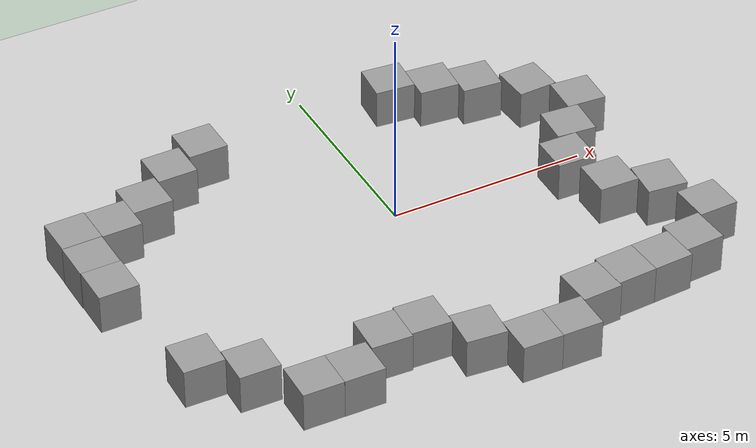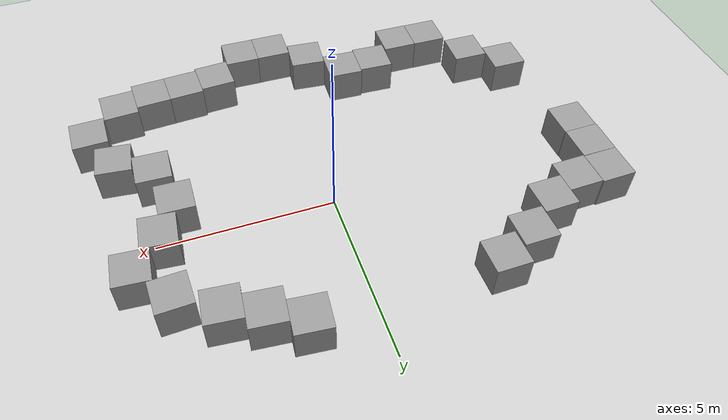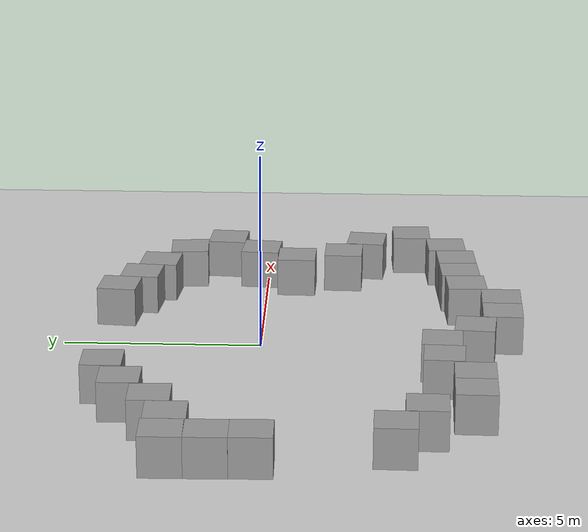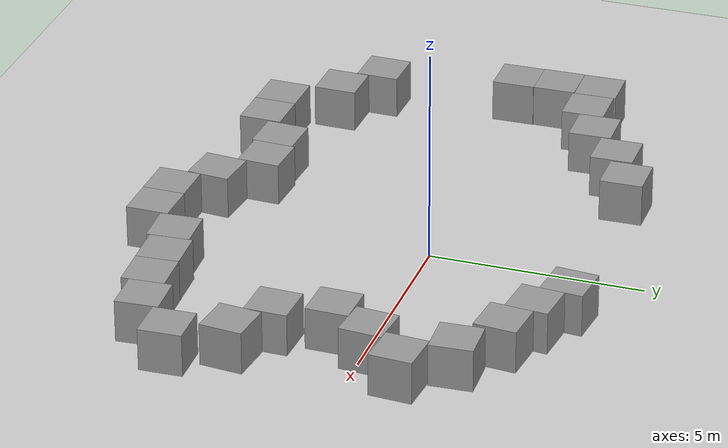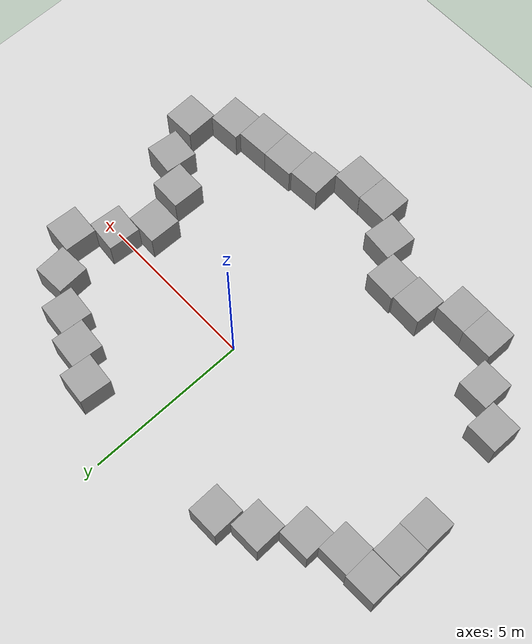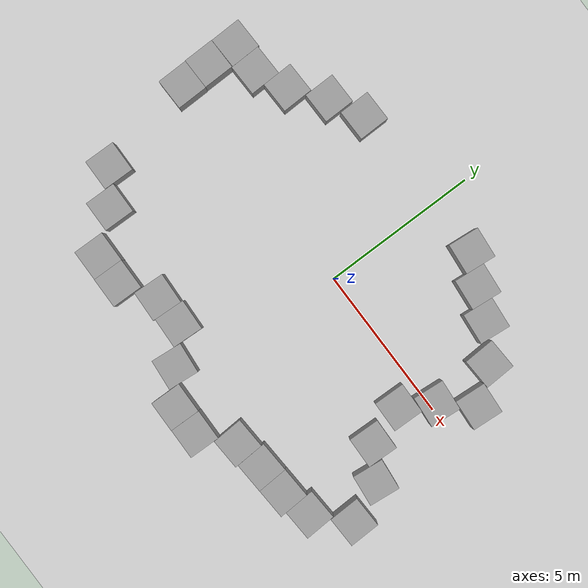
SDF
<sdf version="1.6">
 <world name="default">
  <light name="sun" type="directional">
   <pose>0 0 10 0 -0 0</pose>
   <diffuse>0.8 0.8 0.8 1</diffuse>
   <specular>0.2 0.2 0.2 1</specular>
   <attenuation>
    <range>1000</range>
    <constant>0.9</constant>
    <linear>0.01</linear>
    <quadratic>0.001</quadratic>
   </attenuation>
   <direction>-0.5 0.1 -0.9</direction>
  </light>
  <model name="ground_plane">
   <static>1</static>
   <link name="link">
    <collision name="collision">
     <geometry><plane><normal>0 0 1</normal><size>100 100</size></plane></geometry>
     <surface><friction><ode><mu>100</mu><mu2>50</mu2></ode></friction></surface>
    </collision>
    <visual name="visual">
     <cast_shadows>0</cast_shadows>
     <geometry><plane><normal>0 0 1</normal><size>100 100</size></plane></geometry>
     <material>
      <script><uri>file://media/materials/scripts/gazebo.material</uri><name>Gazebo/Grey</name></script>
     </material>
    </visual>
   </link>
  </model>
  <gravity>0 0 -9.8</gravity>
  <magnetic_field>6e-06 2.3e-05 -4.2e-05</magnetic_field>
  <atmosphere type="adiabatic"/>
  <physics name="default_physics" default="0" type="ode">
   <max_step_size>0.001</max_step_size>
   <real_time_factor>1</real_time_factor>
   <real_time_update_rate>1000</real_time_update_rate>
  </physics>
  <scene><ambient>0.4 0.4 0.4 1</ambient><background>0.7 0.7 0.7 1</background><shadows>1</shadows></scene>
  <audio><device>default</device></audio>
  <spherical_coordinates>
   <surface_model>EARTH_WGS84</surface_model>
   <latitude_deg>0</latitude_deg>
   <longitude_deg>0</longitude_deg>
   <elevation>0</elevation>
   <heading_deg>0</heading_deg>
  </spherical_coordinates>
  <model name="unit_box_0">
   <pose>2.18165 -5.25565 0.5 0 -0 0.052686</pose>
   <link name="link">
    <inertial>
     <mass>1</mass>
     <inertia>
      <ixx>0.166667</ixx>
      <ixy>0</ixy>
      <ixz>0</ixz>
      <iyy>0.166667</iyy>
      <iyz>0</iyz>
      <izz>0.166667</izz>
     </inertia>
    </inertial>
    <collision name="collision"><geometry><box><size>1 1 1</size></box></geometry></collision>
    <visual name="visual">
     <geometry><box><size>1 1 1</size></box></geometry>
     <material>
      <script><name>Gazebo/Grey</name><uri>file://media/materials/scripts/gazebo.material</uri></script>
     </material>
    </visual>
   </link>
  </model>
  <model name="unit_box_3">
   <pose>-3.34176 3.63801 0.5 0 -0 0.012286</pose>
   <link name="link">
    <inertial>
     <mass>1</mass>
     <inertia>
      <ixx>0.166667</ixx>
      <ixy>0</ixy>
      <ixz>0</ixz>
      <iyy>0.166667</iyy>
      <iyz>0</iyz>
      <izz>0.166667</izz>
     </inertia>
    </inertial>
    <collision name="collision"><geometry><box><size>1 1 1</size></box></geometry></collision>
    <visual name="visual">
     <geometry><box><size>1 1 1</size></box></geometry>
     <material>
      <script><name>Gazebo/Grey</name><uri>file://media/materials/scripts/gazebo.material</uri></script>
     </material>
    </visual>
   </link>
  </model>
  <model name="unit_box_4">
   <pose>-4.38572 3.11645 0.5 0 -0 0.012284</pose>
   <link name="link">
    <inertial>
     <mass>1</mass>
     <inertia>
      <ixx>0.166667</ixx>
      <ixy>0</ixy>
      <ixz>0</ixz>
      <iyy>0.166667</iyy>
      <iyz>0</iyz>
      <izz>0.166667</izz>
     </inertia>
    </inertial>
    <collision name="collision"><geometry><box><size>1 1 1</size></box></geometry></collision>
    <visual name="visual">
     <geometry><box><size>1 1 1</size></box></geometry>
     <material>
      <script><name>Gazebo/Grey</name><uri>file://media/materials/scripts/gazebo.material</uri></script>
     </material>
    </visual>
   </link>
  </model>
  <model name="unit_box_5">
   <pose>-5.38874 2.31686 0.5 0 -0 0.02298</pose>
   <link name="link">
    <inertial>
     <mass>1</mass>
     <inertia>
      <ixx>0.166667</ixx>
      <ixy>0</ixy>
      <ixz>0</ixz>
      <iyy>0.166667</iyy>
      <iyz>0</iyz>
      <izz>0.166667</izz>
     </inertia>
    </inertial>
    <collision name="collision"><geometry><box><size>1 1 1</size></box></geometry></collision>
    <visual name="visual">
     <geometry><box><size>1 1 1</size></box></geometry>
     <material>
      <script><name>Gazebo/Grey</name><uri>file://media/materials/scripts/gazebo.material</uri></script>
     </material>
    </visual>
   </link>
  </model>
  <model name="unit_box_6">
   <pose>-6.37862 1.86112 0.5 0 -0 0.02291</pose>
   <link name="link">
    <inertial>
     <mass>1</mass>
     <inertia>
      <ixx>0.166667</ixx>
      <ixy>0</ixy>
      <ixz>0</ixz>
      <iyy>0.166667</iyy>
      <iyz>0</iyz>
      <izz>0.166667</izz>
     </inertia>
    </inertial>
    <collision name="collision"><geometry><box><size>1 1 1</size></box></geometry></collision>
    <visual name="visual">
     <geometry><box><size>1 1 1</size></box></geometry>
     <material>
      <script><name>Gazebo/Grey</name><uri>file://media/materials/scripts/gazebo.material</uri></script>
     </material>
    </visual>
   </link>
  </model>
  <model name="unit_box_7">
   <pose>-7.37984 1.87719 0.5 0 -0 0.022454</pose>
   <link name="link">
    <inertial>
     <mass>1</mass>
     <inertia>
      <ixx>0.166667</ixx>
      <ixy>0</ixy>
      <ixz>0</ixz>
      <iyy>0.166667</iyy>
      <iyz>0</iyz>
      <izz>0.166667</izz>
     </inertia>
    </inertial>
    <collision name="collision"><geometry><box><size>1 1 1</size></box></geometry></collision>
    <visual name="visual">
     <geometry><box><size>1 1 1</size></box></geometry>
     <material>
      <script><name>Gazebo/Grey</name><uri>file://media/materials/scripts/gazebo.material</uri></script>
     </material>
    </visual>
   </link>
  </model>
  <model name="unit_box_8">
   <pose>-7.37057 0.872018 0.5 0 -0 0.012443</pose>
   <link name="link">
    <inertial>
     <mass>1</mass>
     <inertia>
      <ixx>0.166667</ixx>
      <ixy>0</ixy>
      <ixz>0</ixz>
      <iyy>0.166667</iyy>
      <iyz>0</iyz>
      <izz>0.166667</izz>
     </inertia>
    </inertial>
    <collision name="collision"><geometry><box><size>1 1 1</size></box></geometry></collision>
    <visual name="visual">
     <geometry><box><size>1 1 1</size></box></geometry>
     <material>
      <script><name>Gazebo/Grey</name><uri>file://media/materials/scripts/gazebo.material</uri></script>
     </material>
    </visual>
   </link>
  </model>
  <model name="unit_box_9">
   <pose>1.8061 3.77344 0.5 0 0 -0.094189</pose>
   <link name="link">
    <inertial>
     <mass>1</mass>
     <inertia>
      <ixx>0.166667</ixx>
      <ixy>0</ixy>
      <ixz>0</ixz>
      <iyy>0.166667</iyy>
      <iyz>0</iyz>
      <izz>0.166667</izz>
     </inertia>
    </inertial>
    <collision name="collision"><geometry><box><size>1 1 1</size></box></geometry></collision>
    <visual name="visual">
     <geometry><box><size>1 1 1</size></box></geometry>
     <material>
      <script><name>Gazebo/Grey</name><uri>file://media/materials/scripts/gazebo.material</uri></script>
     </material>
    </visual>
   </link>
  </model>
  <model name="unit_box_10">
   <pose>2.76351 3.27538 0.5 0 -0 -0.094193</pose>
   <link name="link">
    <inertial>
     <mass>1</mass>
     <inertia>
      <ixx>0.166667</ixx>
      <ixy>0</ixy>
      <ixz>0</ixz>
      <iyy>0.166667</iyy>
      <iyz>0</iyz>
      <izz>0.166667</izz>
     </inertia>
    </inertial>
    <collision name="collision"><geometry><box><size>1 1 1</size></box></geometry></collision>
    <visual name="visual">
     <geometry><box><size>1 1 1</size></box></geometry>
     <material>
      <script><name>Gazebo/Grey</name><uri>file://media/materials/scripts/gazebo.material</uri></script>
     </material>
    </visual>
   </link>
  </model>
  <model name="unit_box_11">
   <pose>3.72875 2.86019 0.5 0 -0 -0.094191</pose>
   <link name="link">
    <inertial>
     <mass>1</mass>
     <inertia>
      <ixx>0.166667</ixx>
      <ixy>0</ixy>
      <ixz>0</ixz>
      <iyy>0.166667</iyy>
      <iyz>0</iyz>
      <izz>0.166667</izz>
     </inertia>
    </inertial>
    <collision name="collision"><geometry><box><size>1 1 1</size></box></geometry></collision>
    <visual name="visual">
     <geometry><box><size>1 1 1</size></box></geometry>
     <material>
      <script><name>Gazebo/Grey</name><uri>file://media/materials/scripts/gazebo.material</uri></script>
     </material>
    </visual>
   </link>
  </model>
  <model name="unit_box_12">
   <pose>-7.34496 -0.127807 0.499995 1e-05 -0 0.01235</pose>
   <link name="link">
    <inertial>
     <mass>1</mass>
     <inertia>
      <ixx>0.166667</ixx>
      <ixy>0</ixy>
      <ixz>0</ixz>
      <iyy>0.166667</iyy>
      <iyz>0</iyz>
      <izz>0.166667</izz>
     </inertia>
    </inertial>
    <collision name="collision"><geometry><box><size>1 1 1</size></box></geometry></collision>
    <visual name="visual">
     <geometry><box><size>1 1 1</size></box></geometry>
     <material>
      <script><name>Gazebo/Grey</name><uri>file://media/materials/scripts/gazebo.material</uri></script>
     </material>
    </visual>
   </link>
  </model>
  <model name="unit_box_15">
   <pose>-6.73539 -3.32737 0.5 -0 -0 -0.019647</pose>
   <link name="link">
    <inertial>
     <mass>1</mass>
     <inertia>
      <ixx>0.166667</ixx>
      <ixy>0</ixy>
      <ixz>0</ixz>
      <iyy>0.166667</iyy>
      <iyz>0</iyz>
      <izz>0.166667</izz>
     </inertia>
    </inertial>
    <collision name="collision"><geometry><box><size>1 1 1</size></box></geometry></collision>
    <visual name="visual">
     <geometry><box><size>1 1 1</size></box></geometry>
     <material>
      <script><name>Gazebo/Grey</name><uri>file://media/materials/scripts/gazebo.material</uri></script>
     </material>
    </visual>
   </link>
  </model>
  <model name="unit_box_16">
   <pose>-5.73832 -4.05633 0.5 0 0 -0.019634</pose>
   <link name="link">
    <inertial>
     <mass>1</mass>
     <inertia>
      <ixx>0.166667</ixx>
      <ixy>0</ixy>
      <ixz>0</ixz>
      <iyy>0.166667</iyy>
      <iyz>0</iyz>
      <izz>0.166667</izz>
     </inertia>
    </inertial>
    <collision name="collision"><geometry><box><size>1 1 1</size></box></geometry></collision>
    <visual name="visual">
     <geometry><box><size>1 1 1</size></box></geometry>
     <material>
      <script><name>Gazebo/Grey</name><uri>file://media/materials/scripts/gazebo.material</uri></script>
     </material>
    </visual>
   </link>
  </model>
  <model name="unit_box_17">
   <pose>-4.78306 -5.20806 0.5 0 0 -0.018454</pose>
   <link name="link">
    <inertial>
     <mass>1</mass>
     <inertia>
      <ixx>0.166667</ixx>
      <ixy>0</ixy>
      <ixz>0</ixz>
      <iyy>0.166667</iyy>
      <iyz>0</iyz>
      <izz>0.166667</izz>
     </inertia>
    </inertial>
    <collision name="collision"><geometry><box><size>1 1 1</size></box></geometry></collision>
    <visual name="visual">
     <geometry><box><size>1 1 1</size></box></geometry>
     <material>
      <script><name>Gazebo/Grey</name><uri>file://media/materials/scripts/gazebo.material</uri></script>
     </material>
    </visual>
   </link>
  </model>
  <model name="unit_box_18">
   <pose>-3.78332 -5.23118 0.5 0 -0 -0.018454</pose>
   <link name="link">
    <inertial>
     <mass>1</mass>
     <inertia>
      <ixx>0.166667</ixx>
      <ixy>0</ixy>
      <ixz>0</ixz>
      <iyy>0.166667</iyy>
      <iyz>0</iyz>
      <izz>0.166667</izz>
     </inertia>
    </inertial>
    <collision name="collision"><geometry><box><size>1 1 1</size></box></geometry></collision>
    <visual name="visual">
     <geometry><box><size>1 1 1</size></box></geometry>
     <material>
      <script><name>Gazebo/Grey</name><uri>file://media/materials/scripts/gazebo.material</uri></script>
     </material>
    </visual>
   </link>
  </model>
  <model name="unit_box_19">
   <pose>-2.73146 -4.53561 0.5 0 0 -0.0477</pose>
   <link name="link">
    <inertial>
     <mass>1</mass>
     <inertia>
      <ixx>0.166667</ixx>
      <ixy>0</ixy>
      <ixz>0</ixz>
      <iyy>0.166667</iyy>
      <iyz>0</iyz>
      <izz>0.166667</izz>
     </inertia>
    </inertial>
    <collision name="collision"><geometry><box><size>1 1 1</size></box></geometry></collision>
    <visual name="visual">
     <geometry><box><size>1 1 1</size></box></geometry>
     <material>
      <script><name>Gazebo/Grey</name><uri>file://media/materials/scripts/gazebo.material</uri></script>
     </material>
    </visual>
   </link>
  </model>
  <model name="unit_box_20">
   <pose>-1.72936 -4.51553 0.5 0 0 -0.047701</pose>
   <link name="link">
    <inertial>
     <mass>1</mass>
     <inertia>
      <ixx>0.166667</ixx>
      <ixy>0</ixy>
      <ixz>0</ixz>
      <iyy>0.166667</iyy>
      <iyz>0</iyz>
      <izz>0.166667</izz>
     </inertia>
    </inertial>
    <collision name="collision"><geometry><box><size>1 1 1</size></box></geometry></collision>
    <visual name="visual">
     <geometry><box><size>1 1 1</size></box></geometry>
     <material>
      <script><name>Gazebo/Grey</name><uri>file://media/materials/scripts/gazebo.material</uri></script>
     </material>
    </visual>
   </link>
  </model>
  <model name="unit_box_21">
   <pose>-0.781783 -5.36576 0.5 -0 -0 -0.091914</pose>
   <link name="link">
    <inertial>
     <mass>1</mass>
     <inertia>
      <ixx>0.166667</ixx>
      <ixy>0</ixy>
      <ixz>0</ixz>
      <iyy>0.166667</iyy>
      <iyz>0</iyz>
      <izz>0.166667</izz>
     </inertia>
    </inertial>
    <collision name="collision"><geometry><box><size>1 1 1</size></box></geometry></collision>
    <visual name="visual">
     <geometry><box><size>1 1 1</size></box></geometry>
     <material>
      <script><name>Gazebo/Grey</name><uri>file://media/materials/scripts/gazebo.material</uri></script>
     </material>
    </visual>
   </link>
  </model>
  <model name="unit_box_22">
   <pose>0.189834 -6.0939 0.5 0 -0 -0.020637</pose>
   <link name="link">
    <inertial>
     <mass>1</mass>
     <inertia>
      <ixx>0.166667</ixx>
      <ixy>0</ixy>
      <ixz>0</ixz>
      <iyy>0.166667</iyy>
      <iyz>0</iyz>
      <izz>0.166667</izz>
     </inertia>
    </inertial>
    <collision name="collision"><geometry><box><size>1 1 1</size></box></geometry></collision>
    <visual name="visual">
     <geometry><box><size>1 1 1</size></box></geometry>
     <material>
      <script><name>Gazebo/Grey</name><uri>file://media/materials/scripts/gazebo.material</uri></script>
     </material>
    </visual>
   </link>
  </model>
  <model name="unit_box_23">
   <pose>1.18991 -6.10869 0.5 0 -0 -0.02061</pose>
   <link name="link">
    <inertial>
     <mass>1</mass>
     <inertia>
      <ixx>0.166667</ixx>
      <ixy>0</ixy>
      <ixz>0</ixz>
      <iyy>0.166667</iyy>
      <iyz>0</iyz>
      <izz>0.166667</izz>
     </inertia>
    </inertial>
    <collision name="collision"><geometry><box><size>1 1 1</size></box></geometry></collision>
    <visual name="visual">
     <geometry><box><size>1 1 1</size></box></geometry>
     <material>
      <script><name>Gazebo/Grey</name><uri>file://media/materials/scripts/gazebo.material</uri></script>
     </material>
    </visual>
   </link>
  </model>
  <model name="unit_box_24">
   <pose>3.17611 -5.11809 0.5 0 -0 0.053325</pose>
   <link name="link">
    <inertial>
     <mass>1</mass>
     <inertia>
      <ixx>0.166667</ixx>
      <ixy>0</ixy>
      <ixz>0</ixz>
      <iyy>0.166667</iyy>
      <iyz>0</iyz>
      <izz>0.166667</izz>
     </inertia>
    </inertial>
    <collision name="collision"><geometry><box><size>1 1 1</size></box></geometry></collision>
    <visual name="visual">
     <geometry><box><size>1 1 1</size></box></geometry>
     <material>
      <script><name>Gazebo/Grey</name><uri>file://media/materials/scripts/gazebo.material</uri></script>
     </material>
    </visual>
   </link>
  </model>
  <model name="unit_box_25">
   <pose>4.17465 -5.06346 0.499995 -0 -1e-05 0.053357</pose>
   <link name="link">
    <inertial>
     <mass>1</mass>
     <inertia>
      <ixx>0.166667</ixx>
      <ixy>0</ixy>
      <ixz>0</ixz>
      <iyy>0.166667</iyy>
      <iyz>0</iyz>
      <izz>0.166667</izz>
     </inertia>
    </inertial>
    <collision name="collision"><geometry><box><size>1 1 1</size></box></geometry></collision>
    <visual name="visual">
     <geometry><box><size>1 1 1</size></box></geometry>
     <material>
      <script><name>Gazebo/Grey</name><uri>file://media/materials/scripts/gazebo.material</uri></script>
     </material>
    </visual>
   </link>
  </model>
  <model name="unit_box_26">
   <pose>5.16328 -4.82335 0.499995 0 1e-05 0.053399</pose>
   <link name="link">
    <inertial>
     <mass>1</mass>
     <inertia>
      <ixx>0.166667</ixx>
      <ixy>0</ixy>
      <ixz>0</ixz>
      <iyy>0.166667</iyy>
      <iyz>0</iyz>
      <izz>0.166667</izz>
     </inertia>
    </inertial>
    <collision name="collision"><geometry><box><size>1 1 1</size></box></geometry></collision>
    <visual name="visual">
     <geometry><box><size>1 1 1</size></box></geometry>
     <material>
      <script><name>Gazebo/Grey</name><uri>file://media/materials/scripts/gazebo.material</uri></script>
     </material>
    </visual>
   </link>
  </model>
  <model name="unit_box_27">
   <pose>6.14037 -3.89552 0.5 0 -0 0.027853</pose>
   <link name="link">
    <inertial>
     <mass>1</mass>
     <inertia>
      <ixx>0.166667</ixx>
      <ixy>0</ixy>
      <ixz>0</ixz>
      <iyy>0.166667</iyy>
      <iyz>0</iyz>
      <izz>0.166667</izz>
     </inertia>
    </inertial>
    <collision name="collision"><geometry><box><size>1 1 1</size></box></geometry></collision>
    <visual name="visual">
     <geometry><box><size>1 1 1</size></box></geometry>
     <material>
      <script><name>Gazebo/Grey</name><uri>file://media/materials/scripts/gazebo.material</uri></script>
     </material>
    </visual>
   </link>
  </model>
  <model name="unit_box_28">
   <pose>5.59161 -2.66444 0.499995 0 1e-05 -0.104084</pose>
   <link name="link">
    <inertial>
     <mass>1</mass>
     <inertia>
      <ixx>0.166667</ixx>
      <ixy>0</ixy>
      <ixz>0</ixz>
      <iyy>0.166667</iyy>
      <iyz>0</iyz>
      <izz>0.166667</izz>
     </inertia>
    </inertial>
    <collision name="collision"><geometry><box><size>1 1 1</size></box></geometry></collision>
    <visual name="visual">
     <geometry><box><size>1 1 1</size></box></geometry>
     <material>
      <script><name>Gazebo/Grey</name><uri>file://media/materials/scripts/gazebo.material</uri></script>
     </material>
    </visual>
   </link>
  </model>
  <model name="unit_box_29">
   <pose>4.61502 -2.03886 0.5 -0 -0 -0.028652</pose>
   <link name="link">
    <inertial>
     <mass>1</mass>
     <inertia>
      <ixx>0.166667</ixx>
      <ixy>0</ixy>
      <ixz>0</ixz>
      <iyy>0.166667</iyy>
      <iyz>0</iyz>
      <izz>0.166667</izz>
     </inertia>
    </inertial>
    <collision name="collision"><geometry><box><size>1 1 1</size></box></geometry></collision>
    <visual name="visual">
     <geometry><box><size>1 1 1</size></box></geometry>
     <material>
      <script><name>Gazebo/Grey</name><uri>file://media/materials/scripts/gazebo.material</uri></script>
     </material>
    </visual>
   </link>
  </model>
  <model name="unit_box_30">
   <pose>4.21325 -0.787252 0.5 -0 -0 -0.022499</pose>
   <link name="link">
    <inertial>
     <mass>1</mass>
     <inertia>
      <ixx>0.166667</ixx>
      <ixy>0</ixy>
      <ixz>0</ixz>
      <iyy>0.166667</iyy>
      <iyz>0</iyz>
      <izz>0.166667</izz>
     </inertia>
    </inertial>
    <collision name="collision"><geometry><box><size>1 1 1</size></box></geometry></collision>
    <visual name="visual">
     <geometry><box><size>1 1 1</size></box></geometry>
     <material>
      <script><name>Gazebo/Grey</name><uri>file://media/materials/scripts/gazebo.material</uri></script>
     </material>
    </visual>
   </link>
  </model>
  <model name="unit_box_31">
   <pose>4.80818 0.196799 0.5 0 0 -0.086467</pose>
   <link name="link">
    <inertial>
     <mass>1</mass>
     <inertia>
      <ixx>0.166667</ixx>
      <ixy>0</ixy>
      <ixz>0</ixz>
      <iyy>0.166667</iyy>
      <iyz>0</iyz>
      <izz>0.166667</izz>
     </inertia>
    </inertial>
    <collision name="collision"><geometry><box><size>1 1 1</size></box></geometry></collision>
    <visual name="visual">
     <geometry><box><size>1 1 1</size></box></geometry>
     <material>
      <script><name>Gazebo/Grey</name><uri>file://media/materials/scripts/gazebo.material</uri></script>
     </material>
    </visual>
   </link>
  </model>
  <model name="unit_box_33">
   <pose>4.81021 2.15712 0.5 0 -0 0.046444</pose>
   <link name="link">
    <inertial>
     <mass>1</mass>
     <inertia>
      <ixx>0.166667</ixx>
      <ixy>0</ixy>
      <ixz>0</ixz>
      <iyy>0.166667</iyy>
      <iyz>0</iyz>
      <izz>0.166667</izz>
     </inertia>
    </inertial>
    <collision name="collision"><geometry><box><size>1 1 1</size></box></geometry></collision>
    <visual name="visual">
     <geometry><box><size>1 1 1</size></box></geometry>
     <material>
      <script><name>Gazebo/Grey</name><uri>file://media/materials/scripts/gazebo.material</uri></script>
     </material>
    </visual>
   </link>
  </model>
  <model name="unit_box_34">
   <pose>5.63327 1.13904 0.5 0 -0 -0.071103</pose>
   <link name="link">
    <inertial>
     <mass>1</mass>
     <inertia>
      <ixx>0.166667</ixx>
      <ixy>0</ixy>
      <ixz>0</ixz>
      <iyy>0.166667</iyy>
      <iyz>0</iyz>
      <izz>0.166667</izz>
     </inertia>
    </inertial>
    <collision name="collision"><geometry><box><size>1 1 1</size></box></geometry></collision>
    <visual name="visual">
     <geometry><box><size>1 1 1</size></box></geometry>
     <material>
      <script><name>Gazebo/Grey</name><uri>file://media/materials/scripts/gazebo.material</uri></script>
     </material>
    </visual>
   </link>
  </model>
 </world>
</sdf>
